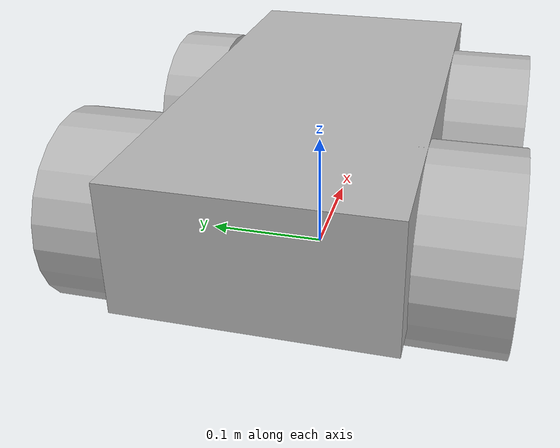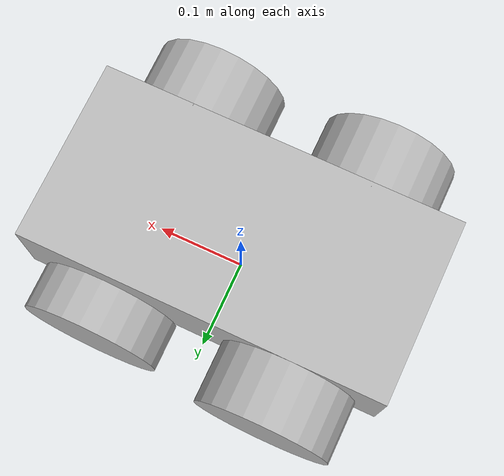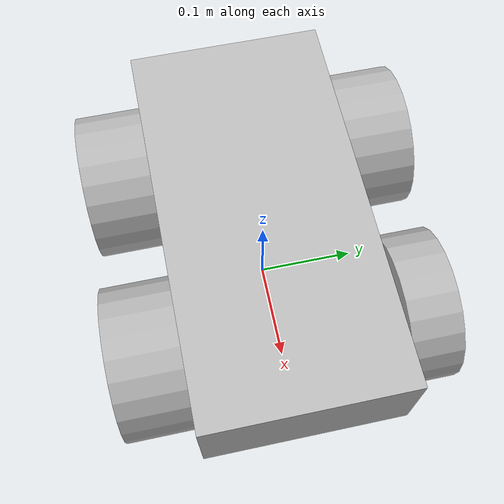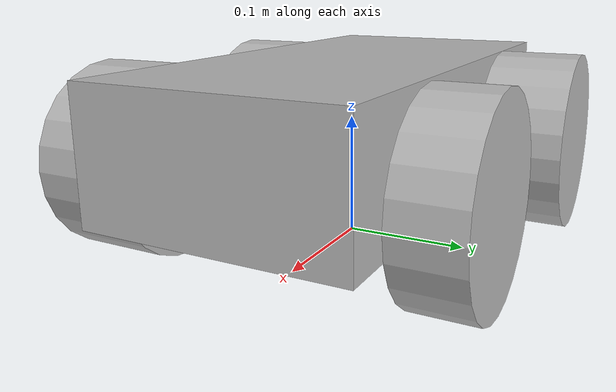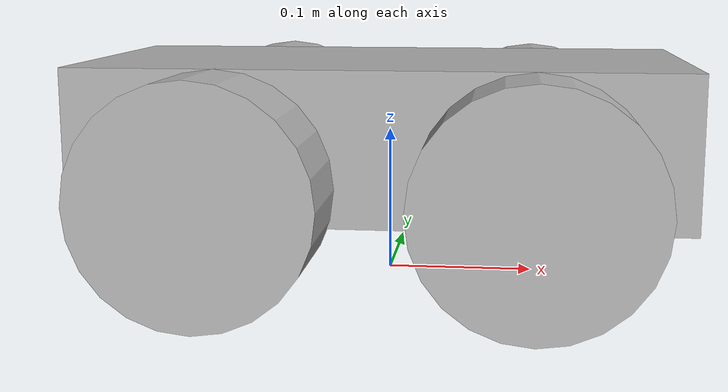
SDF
<?xml version='1.0'?>
<sdf version='1.4'>
  <model name="my_robot">
    <static>false</static>
      <link name='chassis'>
            <pose>0 0 .1 0 0 0</pose>

            <collision name='collision'>
              <geometry>
                <box>
                  <size>.4 .2 .1</size>
                </box>
              </geometry>
            </collision>

            <visual name='visual'>
              <geometry>
                <box>
                  <size>.4 .2 .1</size>
                </box>
              </geometry>
            </visual>

          </link>
      <link name="left_front_wheel">
        <pose>0.1 0.13 0.075 0 1.5707 1.5707</pose>
        <collision name="collision">
          <geometry>
            <cylinder>
              <radius>.075</radius>
              <length>.05</length>
            </cylinder>
          </geometry>
        </collision>
        <visual name="visual">
          <geometry>
            <cylinder>
              <radius>.075</radius>
              <length>.05</length>
            </cylinder>
          </geometry>
        </visual>
      </link>
      <link name="right_front_wheel">
        <pose>0.1 -0.13 0.075 0 1.5707 1.5707</pose>
        <collision name="collision">
          <geometry>
            <cylinder>
              <radius>.075</radius>
              <length>.075</length>
            </cylinder>
          </geometry>
        </collision>
        <visual name="visual">
          <geometry>
            <cylinder>
              <radius>.075</radius>
              <length>.075</length>
            </cylinder>
          </geometry>
        </visual>
      </link>
      <joint type="revolute" name="left_front_wheel_hinge">
        <pose>0 0 -0.03 0 0 0</pose>
        <child>left_front_wheel</child>
        <parent>chassis</parent>
        <axis>
          <xyz>0 1 0</xyz>
        </axis>
      </joint>

      <joint type="revolute" name="right_front_wheel_hinge">
        <pose>0 0 0.03 0 0 0</pose>
        <child>right_front_wheel</child>
        <parent>chassis</parent>
        <axis>
          <xyz>0 1 0</xyz>
        </axis>
      </joint>

      <link name="left_back_wheel">
        <pose>-0.1 0.13 0.075 0 1.5707 1.5707</pose>
        <collision name="collision">
          <geometry>
            <cylinder>
              <radius>.075</radius>
              <length>.075</length>
            </cylinder>
          </geometry>
        </collision>
        <visual name="visual">
          <geometry>
            <cylinder>
              <radius>.075</radius>
              <length>.075</length>
            </cylinder>
          </geometry>
        </visual>
      </link>
      <link name="right_back_wheel">
        <pose>-0.1 -0.13 0.075 0 1.5707 1.5707</pose>
        <collision name="collision">
          <geometry>
            <cylinder>
              <radius>.075</radius>
              <length>.075</length>
            </cylinder>
          </geometry>
        </collision>
        <visual name="visual">
          <geometry>
            <cylinder>
              <radius>.075</radius>
              <length>.075</length>
            </cylinder>
          </geometry>
        </visual>
      </link>
      <joint type="revolute" name="left_back_wheel_hinge">
        <pose>0 0 -0.03 0 0 0</pose>
        <child>left_back_wheel</child>
        <parent>chassis</parent>
        <axis>
          <xyz>0 1 0</xyz>
        </axis>
      </joint>

      <joint type="revolute" name="right_back_wheel_hinge">
        <pose>0 0 0.03 0 0 0</pose>
        <child>right_back_wheel</child>
        <parent>chassis</parent>
        <axis>
          <xyz>0 1 0</xyz>
        </axis>
      </joint>
  </model>
</sdf>
